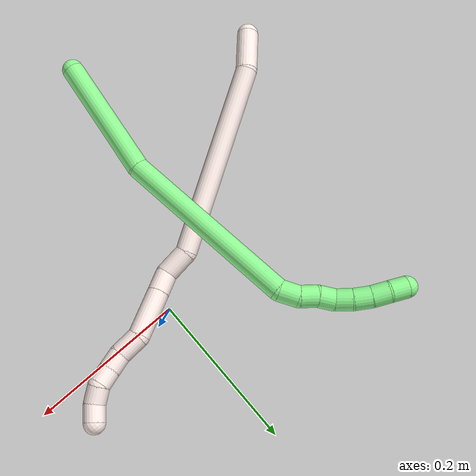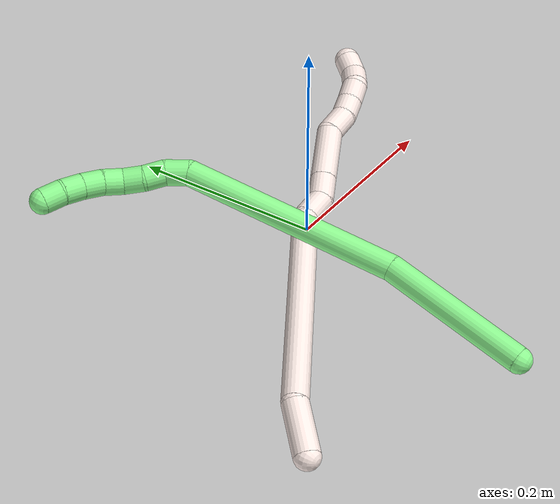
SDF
<sdf version="1.7">
 <world name="default">
  <model name="11">
   <static>0</static>
   <link name="11">
    <collision name="collision-cylinder-e_1_1_4">
     <pose>0.016856 0.005436 0.018547 -0.285105 0.71721 -0.107487</pose>
     <geometry><cylinder><radius>0.0125</radius><length>0.051289</length></cylinder></geometry>
     <surface>
      <friction><ode><mu>1.16</mu><mu2>1.16</mu2><slip1>0</slip1><slip2>0</slip2></ode></friction>
      <contact><ode><kp>1e+06</kp><kd>1</kd><max_vel>0</max_vel><min_depth>0.001</min_depth></ode></contact>
     </surface>
    </collision>
    <visual name="visual-cylinder-e_1_1_4">
     <pose>0.016856 0.005436 0.018547 -0.285105 0.71721 -0.107487</pose>
     <geometry><cylinder><radius>0.0125</radius><length>0.051289</length></cylinder></geometry>
     <material><ambient>1 0.933333 0.909804 1</ambient></material>
    </visual>
    <collision name="collision-cylinder-e_2_4_5">
     <pose>0.103722 0.071168 0.103229 -0.739252 0.66384 -0.265504</pose>
     <geometry><cylinder><radius>0.0125</radius><length>0.227253</length></cylinder></geometry>
     <surface>
      <friction><ode><mu>1.16</mu><mu2>1.16</mu2><slip1>0</slip1><slip2>0</slip2></ode></friction>
      <contact><ode><kp>1e+06</kp><kd>1</kd><max_vel>0</max_vel><min_depth>0.001</min_depth></ode></contact>
     </surface>
    </collision>
    <visual name="visual-cylinder-e_2_4_5">
     <pose>0.103722 0.071168 0.103229 -0.739252 0.66384 -0.265504</pose>
     <geometry><cylinder><radius>0.0125</radius><length>0.227253</length></cylinder></geometry>
     <material><ambient>1 0.933333 0.909804 1</ambient></material>
    </visual>
    <collision name="collision-cylinder-e_3_5_6">
     <pose>0.18391 0.143706 0.172462 -1.32288 0.67836 -0.536053</pose>
     <geometry><cylinder><radius>0.0125</radius><length>0.032435</length></cylinder></geometry>
     <surface>
      <friction><ode><mu>1.16</mu><mu2>1.16</mu2><slip1>0</slip1><slip2>0</slip2></ode></friction>
      <contact><ode><kp>1e+06</kp><kd>1</kd><max_vel>0</max_vel><min_depth>0.001</min_depth></ode></contact>
     </surface>
    </collision>
    <visual name="visual-cylinder-e_3_5_6">
     <pose>0.18391 0.143706 0.172462 -1.32288 0.67836 -0.536053</pose>
     <geometry><cylinder><radius>0.0125</radius><length>0.032435</length></cylinder></geometry>
     <material><ambient>1 0.933333 0.909804 1</ambient></material>
    </visual>
    <collision name="collision-cylinder-e_4_6_7">
     <pose>0.204072 0.160575 0.181653 -0.649702 0.917001 -0.329447</pose>
     <geometry><cylinder><radius>0.0125</radius><length>0.025161</length></cylinder></geometry>
     <surface>
      <friction><ode><mu>1.16</mu><mu2>1.16</mu2><slip1>0</slip1><slip2>0</slip2></ode></friction>
      <contact><ode><kp>1e+06</kp><kd>1</kd><max_vel>0</max_vel><min_depth>0.001</min_depth></ode></contact>
     </surface>
    </collision>
    <visual name="visual-cylinder-e_4_6_7">
     <pose>0.204072 0.160575 0.181653 -0.649702 0.917001 -0.329447</pose>
     <geometry><cylinder><radius>0.0125</radius><length>0.025161</length></cylinder></geometry>
     <material><ambient>1 0.933333 0.909804 1</ambient></material>
    </visual>
    <collision name="collision-cylinder-e_5_7_8">
     <pose>0.235858 0.175532 0.200962 -0.663344 0.914994 -0.33592</pose>
     <geometry><cylinder><radius>0.0125</radius><length>0.055011</length></cylinder></geometry>
     <surface>
      <friction><ode><mu>1.16</mu><mu2>1.16</mu2><slip1>0</slip1><slip2>0</slip2></ode></friction>
      <contact><ode><kp>1e+06</kp><kd>1</kd><max_vel>0</max_vel><min_depth>0.001</min_depth></ode></contact>
     </surface>
    </collision>
    <visual name="visual-cylinder-e_5_7_8">
     <pose>0.235858 0.175532 0.200962 -0.663344 0.914994 -0.33592</pose>
     <geometry><cylinder><radius>0.0125</radius><length>0.055011</length></cylinder></geometry>
     <material><ambient>1 0.933333 0.909804 1</ambient></material>
    </visual>
    <collision name="collision-cylinder-e_6_8_9">
     <pose>0.267705 0.195111 0.21591 -1.38573 0.817997 -0.690805</pose>
     <geometry><cylinder><radius>0.0125</radius><length>0.027534</length></cylinder></geometry>
     <surface>
      <friction><ode><mu>1.16</mu><mu2>1.16</mu2><slip1>0</slip1><slip2>0</slip2></ode></friction>
      <contact><ode><kp>1e+06</kp><kd>1</kd><max_vel>0</max_vel><min_depth>0.001</min_depth></ode></contact>
     </surface>
    </collision>
    <visual name="visual-cylinder-e_6_8_9">
     <pose>0.267705 0.195111 0.21591 -1.38573 0.817997 -0.690805</pose>
     <geometry><cylinder><radius>0.0125</radius><length>0.027534</length></cylinder></geometry>
     <material><ambient>1 0.933333 0.909804 1</ambient></material>
    </visual>
    <collision name="collision-cylinder-e_7_9_10">
     <pose>0.285916 0.209565 0.221026 -0.994046 0.920833 -0.525623</pose>
     <geometry><cylinder><radius>0.0125</radius><length>0.02051</length></cylinder></geometry>
     <surface>
      <friction><ode><mu>1.16</mu><mu2>1.16</mu2><slip1>0</slip1><slip2>0</slip2></ode></friction>
      <contact><ode><kp>1e+06</kp><kd>1</kd><max_vel>0</max_vel><min_depth>0.001</min_depth></ode></contact>
     </surface>
    </collision>
    <visual name="visual-cylinder-e_7_9_10">
     <pose>0.285916 0.209565 0.221026 -0.994046 0.920833 -0.525623</pose>
     <geometry><cylinder><radius>0.0125</radius><length>0.02051</length></cylinder></geometry>
     <material><ambient>1 0.933333 0.909804 1</ambient></material>
    </visual>
    <collision name="collision-cylinder-e_8_10_11">
     <pose>0.302694 0.218857 0.227671 -0.897629 1.02509 -0.52928</pose>
     <geometry><cylinder><radius>0.0125</radius><length>0.020156</length></cylinder></geometry>
     <surface>
      <friction><ode><mu>1.16</mu><mu2>1.16</mu2><slip1>0</slip1><slip2>0</slip2></ode></friction>
      <contact><ode><kp>1e+06</kp><kd>1</kd><max_vel>0</max_vel><min_depth>0.001</min_depth></ode></contact>
     </surface>
    </collision>
    <visual name="visual-cylinder-e_8_10_11">
     <pose>0.302694 0.218857 0.227671 -0.897629 1.02509 -0.52928</pose>
     <geometry><cylinder><radius>0.0125</radius><length>0.020156</length></cylinder></geometry>
     <material><ambient>1 0.933333 0.909804 1</ambient></material>
    </visual>
    <collision name="collision-cylinder-e_9_11_12">
     <pose>0.316488 0.228686 0.23759 -0.711472 0.532418 -0.201936</pose>
     <geometry><cylinder><radius>0.0125</radius><length>0.020407</length></cylinder></geometry>
     <surface>
      <friction><ode><mu>1.16</mu><mu2>1.16</mu2><slip1>0</slip1><slip2>0</slip2></ode></friction>
      <contact><ode><kp>1e+06</kp><kd>1</kd><max_vel>0</max_vel><min_depth>0.001</min_depth></ode></contact>
     </surface>
    </collision>
    <visual name="visual-cylinder-e_9_11_12">
     <pose>0.316488 0.228686 0.23759 -0.711472 0.532418 -0.201936</pose>
     <geometry><cylinder><radius>0.0125</radius><length>0.020407</length></cylinder></geometry>
     <material><ambient>1 0.933333 0.909804 1</ambient></material>
    </visual>
    <collision name="collision-cylinder-e_10_12_2">
     <pose>0.327236 0.23683 0.252352 -0.288299 0.582548 -0.086981</pose>
     <geometry><cylinder><radius>0.0125</radius><length>0.020243</length></cylinder></geometry>
     <surface>
      <friction><ode><mu>1.16</mu><mu2>1.16</mu2><slip1>0</slip1><slip2>0</slip2></ode></friction>
      <contact><ode><kp>1e+06</kp><kd>1</kd><max_vel>0</max_vel><min_depth>0.001</min_depth></ode></contact>
     </surface>
    </collision>
    <visual name="visual-cylinder-e_10_12_2">
     <pose>0.327236 0.23683 0.252352 -0.288299 0.582548 -0.086981</pose>
     <geometry><cylinder><radius>0.0125</radius><length>0.020243</length></cylinder></geometry>
     <material><ambient>1 0.933333 0.909804 1</ambient></material>
    </visual>
    <collision name="collision-sphere-2">
     <pose>0.332804 0.239233 0.260456 0 -0 0</pose>
     <geometry><sphere><radius>0.0125</radius></sphere></geometry>
     <surface>
      <friction><ode><mu>1.16</mu><mu2>1.16</mu2><slip1>0</slip1><slip2>0</slip2></ode></friction>
      <contact><ode><kp>1e+06</kp><kd>1</kd><max_vel>0</max_vel><min_depth>0.001</min_depth></ode></contact>
     </surface>
    </collision>
    <visual name="visual-sphere-2">
     <pose>0.332804 0.239233 0.260456 0 -0 0</pose>
     <geometry><sphere><radius>0.0125</radius></sphere></geometry>
     <material><ambient>1 0.933333 0.909804 1</ambient></material>
    </visual>
    <collision name="collision-sphere-12">
     <pose>0.321667 0.234427 0.244249 0 -0 0</pose>
     <geometry><sphere><radius>0.0125</radius></sphere></geometry>
     <surface>
      <friction><ode><mu>1.16</mu><mu2>1.16</mu2><slip1>0</slip1><slip2>0</slip2></ode></friction>
      <contact><ode><kp>1e+06</kp><kd>1</kd><max_vel>0</max_vel><min_depth>0.001</min_depth></ode></contact>
     </surface>
    </collision>
    <visual name="visual-sphere-12">
     <pose>0.321667 0.234427 0.244249 0 -0 0</pose>
     <geometry><sphere><radius>0.0125</radius></sphere></geometry>
     <material><ambient>1 0.933333 0.909804 1</ambient></material>
    </visual>
    <collision name="collision-sphere-11">
     <pose>0.311308 0.222946 0.230932 0 -0 0</pose>
     <geometry><sphere><radius>0.0125</radius></sphere></geometry>
     <surface>
      <friction><ode><mu>1.16</mu><mu2>1.16</mu2><slip1>0</slip1><slip2>0</slip2></ode></friction>
      <contact><ode><kp>1e+06</kp><kd>1</kd><max_vel>0</max_vel><min_depth>0.001</min_depth></ode></contact>
     </surface>
    </collision>
    <visual name="visual-sphere-11">
     <pose>0.311308 0.222946 0.230932 0 -0 0</pose>
     <geometry><sphere><radius>0.0125</radius></sphere></geometry>
     <material><ambient>1 0.933333 0.909804 1</ambient></material>
    </visual>
    <collision name="collision-sphere-10">
     <pose>0.29408 0.214767 0.22441 0 -0 0</pose>
     <geometry><sphere><radius>0.0125</radius></sphere></geometry>
     <surface>
      <friction><ode><mu>1.16</mu><mu2>1.16</mu2><slip1>0</slip1><slip2>0</slip2></ode></friction>
      <contact><ode><kp>1e+06</kp><kd>1</kd><max_vel>0</max_vel><min_depth>0.001</min_depth></ode></contact>
     </surface>
    </collision>
    <visual name="visual-sphere-10">
     <pose>0.29408 0.214767 0.22441 0 -0 0</pose>
     <geometry><sphere><radius>0.0125</radius></sphere></geometry>
     <material><ambient>1 0.933333 0.909804 1</ambient></material>
    </visual>
    <collision name="collision-sphere-9">
     <pose>0.277752 0.204363 0.217642 0 -0 0</pose>
     <geometry><sphere><radius>0.0125</radius></sphere></geometry>
     <surface>
      <friction><ode><mu>1.16</mu><mu2>1.16</mu2><slip1>0</slip1><slip2>0</slip2></ode></friction>
      <contact><ode><kp>1e+06</kp><kd>1</kd><max_vel>0</max_vel><min_depth>0.001</min_depth></ode></contact>
     </surface>
    </collision>
    <visual name="visual-sphere-9">
     <pose>0.277752 0.204363 0.217642 0 -0 0</pose>
     <geometry><sphere><radius>0.0125</radius></sphere></geometry>
     <material><ambient>1 0.933333 0.909804 1</ambient></material>
    </visual>
    <collision name="collision-sphere-4">
     <pose>0.033712 0.010872 0.037093 0 -0 0</pose>
     <geometry><sphere><radius>0.0125</radius></sphere></geometry>
     <surface>
      <friction><ode><mu>1.16</mu><mu2>1.16</mu2><slip1>0</slip1><slip2>0</slip2></ode></friction>
      <contact><ode><kp>1e+06</kp><kd>1</kd><max_vel>0</max_vel><min_depth>0.001</min_depth></ode></contact>
     </surface>
    </collision>
    <visual name="visual-sphere-4">
     <pose>0.033712 0.010872 0.037093 0 -0 0</pose>
     <geometry><sphere><radius>0.0125</radius></sphere></geometry>
     <material><ambient>1 0.933333 0.909804 1</ambient></material>
    </visual>
    <collision name="collision-sphere-1">
     <geometry><sphere><radius>0.0125</radius></sphere></geometry>
     <surface>
      <friction><ode><mu>1.16</mu><mu2>1.16</mu2><slip1>0</slip1><slip2>0</slip2></ode></friction>
      <contact><ode><kp>1e+06</kp><kd>1</kd><max_vel>0</max_vel><min_depth>0.001</min_depth></ode></contact>
     </surface>
    </collision>
    <visual name="visual-sphere-1">
     <geometry><sphere><radius>0.0125</radius></sphere></geometry>
     <material><ambient>1 0.933333 0.909804 1</ambient></material>
    </visual>
    <collision name="collision-sphere-8">
     <pose>0.257658 0.18586 0.214178 0 -0 0</pose>
     <geometry><sphere><radius>0.0125</radius></sphere></geometry>
     <surface>
      <friction><ode><mu>1.16</mu><mu2>1.16</mu2><slip1>0</slip1><slip2>0</slip2></ode></friction>
      <contact><ode><kp>1e+06</kp><kd>1</kd><max_vel>0</max_vel><min_depth>0.001</min_depth></ode></contact>
     </surface>
    </collision>
    <visual name="visual-sphere-8">
     <pose>0.257658 0.18586 0.214178 0 -0 0</pose>
     <geometry><sphere><radius>0.0125</radius></sphere></geometry>
     <material><ambient>1 0.933333 0.909804 1</ambient></material>
    </visual>
    <collision name="collision-sphere-5">
     <pose>0.173733 0.131465 0.169364 0 -0 0</pose>
     <geometry><sphere><radius>0.0125</radius></sphere></geometry>
     <surface>
      <friction><ode><mu>1.16</mu><mu2>1.16</mu2><slip1>0</slip1><slip2>0</slip2></ode></friction>
      <contact><ode><kp>1e+06</kp><kd>1</kd><max_vel>0</max_vel><min_depth>0.001</min_depth></ode></contact>
     </surface>
    </collision>
    <visual name="visual-sphere-5">
     <pose>0.173733 0.131465 0.169364 0 -0 0</pose>
     <geometry><sphere><radius>0.0125</radius></sphere></geometry>
     <material><ambient>1 0.933333 0.909804 1</ambient></material>
    </visual>
    <collision name="collision-sphere-6">
     <pose>0.194086 0.155947 0.175561 0 -0 0</pose>
     <geometry><sphere><radius>0.0125</radius></sphere></geometry>
     <surface>
      <friction><ode><mu>1.16</mu><mu2>1.16</mu2><slip1>0</slip1><slip2>0</slip2></ode></friction>
      <contact><ode><kp>1e+06</kp><kd>1</kd><max_vel>0</max_vel><min_depth>0.001</min_depth></ode></contact>
     </surface>
    </collision>
    <visual name="visual-sphere-6">
     <pose>0.194086 0.155947 0.175561 0 -0 0</pose>
     <geometry><sphere><radius>0.0125</radius></sphere></geometry>
     <material><ambient>1 0.933333 0.909804 1</ambient></material>
    </visual>
    <collision name="collision-sphere-7">
     <pose>0.214058 0.165204 0.187746 0 -0 0</pose>
     <geometry><sphere><radius>0.0125</radius></sphere></geometry>
     <surface>
      <friction><ode><mu>1.16</mu><mu2>1.16</mu2><slip1>0</slip1><slip2>0</slip2></ode></friction>
      <contact><ode><kp>1e+06</kp><kd>1</kd><max_vel>0</max_vel><min_depth>0.001</min_depth></ode></contact>
     </surface>
    </collision>
    <visual name="visual-sphere-7">
     <pose>0.214058 0.165204 0.187746 0 -0 0</pose>
     <geometry><sphere><radius>0.0125</radius></sphere></geometry>
     <material><ambient>1 0.933333 0.909804 1</ambient></material>
    </visual>
    <inertial>
     <pose>0.161859 0.116705 0.141308 0 -0 0</pose>
     <mass>0.5</mass>
     <inertia>
      <ixx>0.000592</ixx>
      <ixy>0</ixy>
      <ixz>0</ixz>
      <iyy>0.000656</iyy>
      <iyz>0</iyz>
      <izz>-0.001161</izz>
     </inertia>
    </inertial>
   </link>
   <pose>-0.286611 -0.191329 0.014676 -1.54576 -0.877691 -0.093586</pose>
  </model>
  <model name="13">
   <static>0</static>
   <link name="13">
    <collision name="collision-cylinder-e_1_1_4">
     <pose>0.00985 0.014554 0.07032 -0.204087 0.136317 -0.01398</pose>
     <geometry><cylinder><radius>0.0125</radius><length>0.144966</length></cylinder></geometry>
     <surface>
      <friction><ode><mu>1.16</mu><mu2>1.16</mu2><slip1>0</slip1><slip2>0</slip2></ode></friction>
      <contact><ode><kp>1e+06</kp><kd>1</kd><max_vel>0</max_vel><min_depth>0.001</min_depth></ode></contact>
     </surface>
    </collision>
    <visual name="visual-cylinder-e_1_1_4">
     <pose>0.00985 0.014554 0.07032 -0.204087 0.136317 -0.01398</pose>
     <geometry><cylinder><radius>0.0125</radius><length>0.144966</length></cylinder></geometry>
     <material><ambient>0.564706 0.984314 0.572549 1</ambient></material>
    </visual>
    <collision name="collision-cylinder-e_2_4_5">
     <pose>0.015035 0.032241 0.246222 -0.02966 -0.044134 0.000655</pose>
     <geometry><cylinder><radius>0.0125</radius><length>0.211462</length></cylinder></geometry>
     <surface>
      <friction><ode><mu>1.16</mu><mu2>1.16</mu2><slip1>0</slip1><slip2>0</slip2></ode></friction>
      <contact><ode><kp>1e+06</kp><kd>1</kd><max_vel>0</max_vel><min_depth>0.001</min_depth></ode></contact>
     </surface>
    </collision>
    <visual name="visual-cylinder-e_2_4_5">
     <pose>0.015035 0.032241 0.246222 -0.02966 -0.044134 0.000655</pose>
     <geometry><cylinder><radius>0.0125</radius><length>0.211462</length></cylinder></geometry>
     <material><ambient>0.564706 0.984314 0.572549 1</ambient></material>
    </visual>
    <collision name="collision-cylinder-e_3_5_6">
     <pose>0.005221 0.033918 0.361886 0.143349 -0.468005 -0.034225</pose>
     <geometry><cylinder><radius>0.0125</radius><length>0.022829</length></cylinder></geometry>
     <surface>
      <friction><ode><mu>1.16</mu><mu2>1.16</mu2><slip1>0</slip1><slip2>0</slip2></ode></friction>
      <contact><ode><kp>1e+06</kp><kd>1</kd><max_vel>0</max_vel><min_depth>0.001</min_depth></ode></contact>
     </surface>
    </collision>
    <visual name="visual-cylinder-e_3_5_6">
     <pose>0.005221 0.033918 0.361886 0.143349 -0.468005 -0.034225</pose>
     <geometry><cylinder><radius>0.0125</radius><length>0.022829</length></cylinder></geometry>
     <material><ambient>0.564706 0.984314 0.572549 1</ambient></material>
    </visual>
    <collision name="collision-cylinder-e_4_6_7">
     <pose>-0.006969 0.029395 0.378886 0.41738 -0.749446 -0.1662</pose>
     <geometry><cylinder><radius>0.0125</radius><length>0.020671</length></cylinder></geometry>
     <surface>
      <friction><ode><mu>1.16</mu><mu2>1.16</mu2><slip1>0</slip1><slip2>0</slip2></ode></friction>
      <contact><ode><kp>1e+06</kp><kd>1</kd><max_vel>0</max_vel><min_depth>0.001</min_depth></ode></contact>
     </surface>
    </collision>
    <visual name="visual-cylinder-e_4_6_7">
     <pose>-0.006969 0.029395 0.378886 0.41738 -0.749446 -0.1662</pose>
     <geometry><cylinder><radius>0.0125</radius><length>0.020671</length></cylinder></geometry>
     <material><ambient>0.564706 0.984314 0.572549 1</ambient></material>
    </visual>
    <collision name="collision-cylinder-e_5_7_8">
     <pose>-0.019846 0.025162 0.39384 0.144057 -0.623166 -0.046469</pose>
     <geometry><cylinder><radius>0.0125</radius><length>0.020003</length></cylinder></geometry>
     <surface>
      <friction><ode><mu>1.16</mu><mu2>1.16</mu2><slip1>0</slip1><slip2>0</slip2></ode></friction>
      <contact><ode><kp>1e+06</kp><kd>1</kd><max_vel>0</max_vel><min_depth>0.001</min_depth></ode></contact>
     </surface>
    </collision>
    <visual name="visual-cylinder-e_5_7_8">
     <pose>-0.019846 0.025162 0.39384 0.144057 -0.623166 -0.046469</pose>
     <geometry><cylinder><radius>0.0125</radius><length>0.020003</length></cylinder></geometry>
     <material><ambient>0.564706 0.984314 0.572549 1</ambient></material>
    </visual>
    <collision name="collision-cylinder-e_6_8_9">
     <pose>-0.030583 0.01924 0.409198 0.576225 -0.511441 -0.154653</pose>
     <geometry><cylinder><radius>0.0125</radius><length>0.020022</length></cylinder></geometry>
     <surface>
      <friction><ode><mu>1.16</mu><mu2>1.16</mu2><slip1>0</slip1><slip2>0</slip2></ode></friction>
      <contact><ode><kp>1e+06</kp><kd>1</kd><max_vel>0</max_vel><min_depth>0.001</min_depth></ode></contact>
     </surface>
    </collision>
    <visual name="visual-cylinder-e_6_8_9">
     <pose>-0.030583 0.01924 0.409198 0.576225 -0.511441 -0.154653</pose>
     <geometry><cylinder><radius>0.0125</radius><length>0.020022</length></cylinder></geometry>
     <material><ambient>0.564706 0.984314 0.572549 1</ambient></material>
    </visual>
    <collision name="collision-cylinder-e_7_9_10">
     <pose>-0.041509 0.009551 0.422815 0.664418 -0.6457 -0.229823</pose>
     <geometry><cylinder><radius>0.0125</radius><length>0.020029</length></cylinder></geometry>
     <surface>
      <friction><ode><mu>1.16</mu><mu2>1.16</mu2><slip1>0</slip1><slip2>0</slip2></ode></friction>
      <contact><ode><kp>1e+06</kp><kd>1</kd><max_vel>0</max_vel><min_depth>0.001</min_depth></ode></contact>
     </surface>
    </collision>
    <visual name="visual-cylinder-e_7_9_10">
     <pose>-0.041509 0.009551 0.422815 0.664418 -0.6457 -0.229823</pose>
     <geometry><cylinder><radius>0.0125</radius><length>0.020029</length></cylinder></geometry>
     <material><ambient>0.564706 0.984314 0.572549 1</ambient></material>
    </visual>
    <collision name="collision-cylinder-e_8_10_11">
     <pose>-0.053958 -0.000994 0.434337 0.821134 -0.697178 -0.313806</pose>
     <geometry><cylinder><radius>0.0125</radius><length>0.020006</length></cylinder></geometry>
     <surface>
      <friction><ode><mu>1.16</mu><mu2>1.16</mu2><slip1>0</slip1><slip2>0</slip2></ode></friction>
      <contact><ode><kp>1e+06</kp><kd>1</kd><max_vel>0</max_vel><min_depth>0.001</min_depth></ode></contact>
     </surface>
    </collision>
    <visual name="visual-cylinder-e_8_10_11">
     <pose>-0.053958 -0.000994 0.434337 0.821134 -0.697178 -0.313806</pose>
     <geometry><cylinder><radius>0.0125</radius><length>0.020006</length></cylinder></geometry>
     <material><ambient>0.564706 0.984314 0.572549 1</ambient></material>
    </visual>
    <collision name="collision-cylinder-e_9_11_2">
     <pose>-0.067999 -0.0108 0.444512 0.702911 -0.865481 -0.335584</pose>
     <geometry><cylinder><radius>0.0125</radius><length>0.020012</length></cylinder></geometry>
     <surface>
      <friction><ode><mu>1.16</mu><mu2>1.16</mu2><slip1>0</slip1><slip2>0</slip2></ode></friction>
      <contact><ode><kp>1e+06</kp><kd>1</kd><max_vel>0</max_vel><min_depth>0.001</min_depth></ode></contact>
     </surface>
    </collision>
    <visual name="visual-cylinder-e_9_11_2">
     <pose>-0.067999 -0.0108 0.444512 0.702911 -0.865481 -0.335584</pose>
     <geometry><cylinder><radius>0.0125</radius><length>0.020012</length></cylinder></geometry>
     <material><ambient>0.564706 0.984314 0.572549 1</ambient></material>
    </visual>
    <collision name="collision-sphere-2">
     <pose>-0.075618 -0.014993 0.449461 0 -0 0</pose>
     <geometry><sphere><radius>0.0125</radius></sphere></geometry>
     <surface>
      <friction><ode><mu>1.16</mu><mu2>1.16</mu2><slip1>0</slip1><slip2>0</slip2></ode></friction>
      <contact><ode><kp>1e+06</kp><kd>1</kd><max_vel>0</max_vel><min_depth>0.001</min_depth></ode></contact>
     </surface>
    </collision>
    <visual name="visual-sphere-2">
     <pose>-0.075618 -0.014993 0.449461 0 -0 0</pose>
     <geometry><sphere><radius>0.0125</radius></sphere></geometry>
     <material><ambient>0.564706 0.984314 0.572549 1</ambient></material>
    </visual>
    <collision name="collision-sphere-11">
     <pose>-0.06038 -0.006607 0.439563 0 -0 0</pose>
     <geometry><sphere><radius>0.0125</radius></sphere></geometry>
     <surface>
      <friction><ode><mu>1.16</mu><mu2>1.16</mu2><slip1>0</slip1><slip2>0</slip2></ode></friction>
      <contact><ode><kp>1e+06</kp><kd>1</kd><max_vel>0</max_vel><min_depth>0.001</min_depth></ode></contact>
     </surface>
    </collision>
    <visual name="visual-sphere-11">
     <pose>-0.06038 -0.006607 0.439563 0 -0 0</pose>
     <geometry><sphere><radius>0.0125</radius></sphere></geometry>
     <material><ambient>0.564706 0.984314 0.572549 1</ambient></material>
    </visual>
    <collision name="collision-sphere-10">
     <pose>-0.047535 0.004619 0.429112 0 -0 0</pose>
     <geometry><sphere><radius>0.0125</radius></sphere></geometry>
     <surface>
      <friction><ode><mu>1.16</mu><mu2>1.16</mu2><slip1>0</slip1><slip2>0</slip2></ode></friction>
      <contact><ode><kp>1e+06</kp><kd>1</kd><max_vel>0</max_vel><min_depth>0.001</min_depth></ode></contact>
     </surface>
    </collision>
    <visual name="visual-sphere-10">
     <pose>-0.047535 0.004619 0.429112 0 -0 0</pose>
     <geometry><sphere><radius>0.0125</radius></sphere></geometry>
     <material><ambient>0.564706 0.984314 0.572549 1</ambient></material>
    </visual>
    <collision name="collision-sphere-9">
     <pose>-0.035483 0.014483 0.416518 0 -0 0</pose>
     <geometry><sphere><radius>0.0125</radius></sphere></geometry>
     <surface>
      <friction><ode><mu>1.16</mu><mu2>1.16</mu2><slip1>0</slip1><slip2>0</slip2></ode></friction>
      <contact><ode><kp>1e+06</kp><kd>1</kd><max_vel>0</max_vel><min_depth>0.001</min_depth></ode></contact>
     </surface>
    </collision>
    <visual name="visual-sphere-9">
     <pose>-0.035483 0.014483 0.416518 0 -0 0</pose>
     <geometry><sphere><radius>0.0125</radius></sphere></geometry>
     <material><ambient>0.564706 0.984314 0.572549 1</ambient></material>
    </visual>
    <collision name="collision-sphere-4">
     <pose>0.0197 0.029108 0.140641 0 -0 0</pose>
     <geometry><sphere><radius>0.0125</radius></sphere></geometry>
     <surface>
      <friction><ode><mu>1.16</mu><mu2>1.16</mu2><slip1>0</slip1><slip2>0</slip2></ode></friction>
      <contact><ode><kp>1e+06</kp><kd>1</kd><max_vel>0</max_vel><min_depth>0.001</min_depth></ode></contact>
     </surface>
    </collision>
    <visual name="visual-sphere-4">
     <pose>0.0197 0.029108 0.140641 0 -0 0</pose>
     <geometry><sphere><radius>0.0125</radius></sphere></geometry>
     <material><ambient>0.564706 0.984314 0.572549 1</ambient></material>
    </visual>
    <collision name="collision-sphere-1">
     <geometry><sphere><radius>0.0125</radius></sphere></geometry>
     <surface>
      <friction><ode><mu>1.16</mu><mu2>1.16</mu2><slip1>0</slip1><slip2>0</slip2></ode></friction>
      <contact><ode><kp>1e+06</kp><kd>1</kd><max_vel>0</max_vel><min_depth>0.001</min_depth></ode></contact>
     </surface>
    </collision>
    <visual name="visual-sphere-1">
     <geometry><sphere><radius>0.0125</radius></sphere></geometry>
     <material><ambient>0.564706 0.984314 0.572549 1</ambient></material>
    </visual>
    <collision name="collision-sphere-8">
     <pose>-0.025683 0.023996 0.401877 0 -0 0</pose>
     <geometry><sphere><radius>0.0125</radius></sphere></geometry>
     <surface>
      <friction><ode><mu>1.16</mu><mu2>1.16</mu2><slip1>0</slip1><slip2>0</slip2></ode></friction>
      <contact><ode><kp>1e+06</kp><kd>1</kd><max_vel>0</max_vel><min_depth>0.001</min_depth></ode></contact>
     </surface>
    </collision>
    <visual name="visual-sphere-8">
     <pose>-0.025683 0.023996 0.401877 0 -0 0</pose>
     <geometry><sphere><radius>0.0125</radius></sphere></geometry>
     <material><ambient>0.564706 0.984314 0.572549 1</ambient></material>
    </visual>
    <collision name="collision-sphere-5">
     <pose>0.010371 0.035373 0.351804 0 -0 0</pose>
     <geometry><sphere><radius>0.0125</radius></sphere></geometry>
     <surface>
      <friction><ode><mu>1.16</mu><mu2>1.16</mu2><slip1>0</slip1><slip2>0</slip2></ode></friction>
      <contact><ode><kp>1e+06</kp><kd>1</kd><max_vel>0</max_vel><min_depth>0.001</min_depth></ode></contact>
     </surface>
    </collision>
    <visual name="visual-sphere-5">
     <pose>0.010371 0.035373 0.351804 0 -0 0</pose>
     <geometry><sphere><radius>0.0125</radius></sphere></geometry>
     <material><ambient>0.564706 0.984314 0.572549 1</ambient></material>
    </visual>
    <collision name="collision-sphere-6">
     <pose>7.2e-05 0.032462 0.371969 0 -0 0</pose>
     <geometry><sphere><radius>0.0125</radius></sphere></geometry>
     <surface>
      <friction><ode><mu>1.16</mu><mu2>1.16</mu2><slip1>0</slip1><slip2>0</slip2></ode></friction>
      <contact><ode><kp>1e+06</kp><kd>1</kd><max_vel>0</max_vel><min_depth>0.001</min_depth></ode></contact>
     </surface>
    </collision>
    <visual name="visual-sphere-6">
     <pose>7.2e-05 0.032462 0.371969 0 -0 0</pose>
     <geometry><sphere><radius>0.0125</radius></sphere></geometry>
     <material><ambient>0.564706 0.984314 0.572549 1</ambient></material>
    </visual>
    <collision name="collision-sphere-7">
     <pose>-0.01401 0.026328 0.385802 0 -0 0</pose>
     <geometry><sphere><radius>0.0125</radius></sphere></geometry>
     <surface>
      <friction><ode><mu>1.16</mu><mu2>1.16</mu2><slip1>0</slip1><slip2>0</slip2></ode></friction>
      <contact><ode><kp>1e+06</kp><kd>1</kd><max_vel>0</max_vel><min_depth>0.001</min_depth></ode></contact>
     </surface>
    </collision>
    <visual name="visual-sphere-7">
     <pose>-0.01401 0.026328 0.385802 0 -0 0</pose>
     <geometry><sphere><radius>0.0125</radius></sphere></geometry>
     <material><ambient>0.564706 0.984314 0.572549 1</ambient></material>
    </visual>
    <inertial>
     <pose>0.000603 0.022307 0.240957 0 -0 0</pose>
     <mass>0.5</mass>
     <inertia>
      <ixx>0.00105</ixx>
      <ixy>0</ixy>
      <ixz>0</ixz>
      <iyy>0.001054</iyy>
      <iyz>0</iyz>
      <izz>-3.1e-05</izz>
     </inertia>
    </inertial>
   </link>
   <pose>-0.098733 -0.288511 0.035939 -1.1935 -0.806907 -0.137401</pose>
  </model>
 </world>
</sdf>
